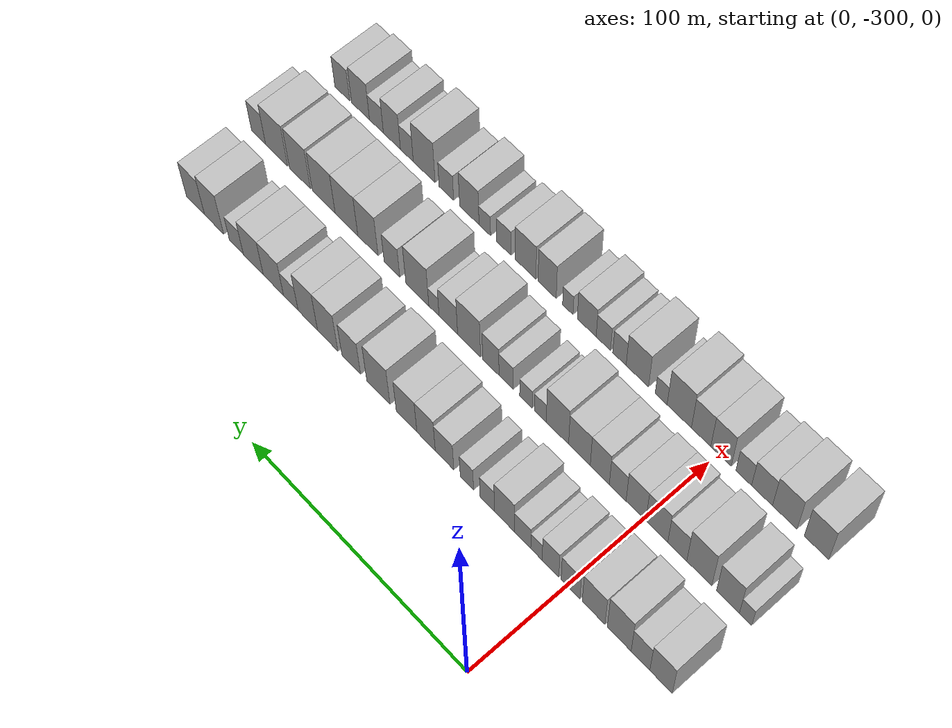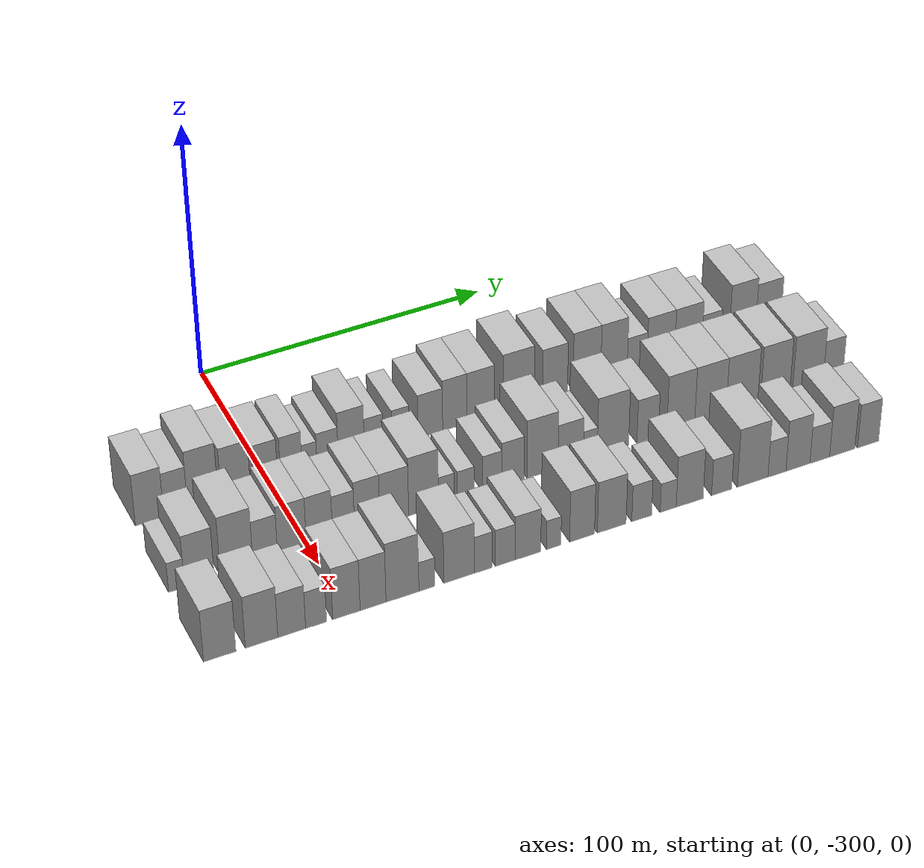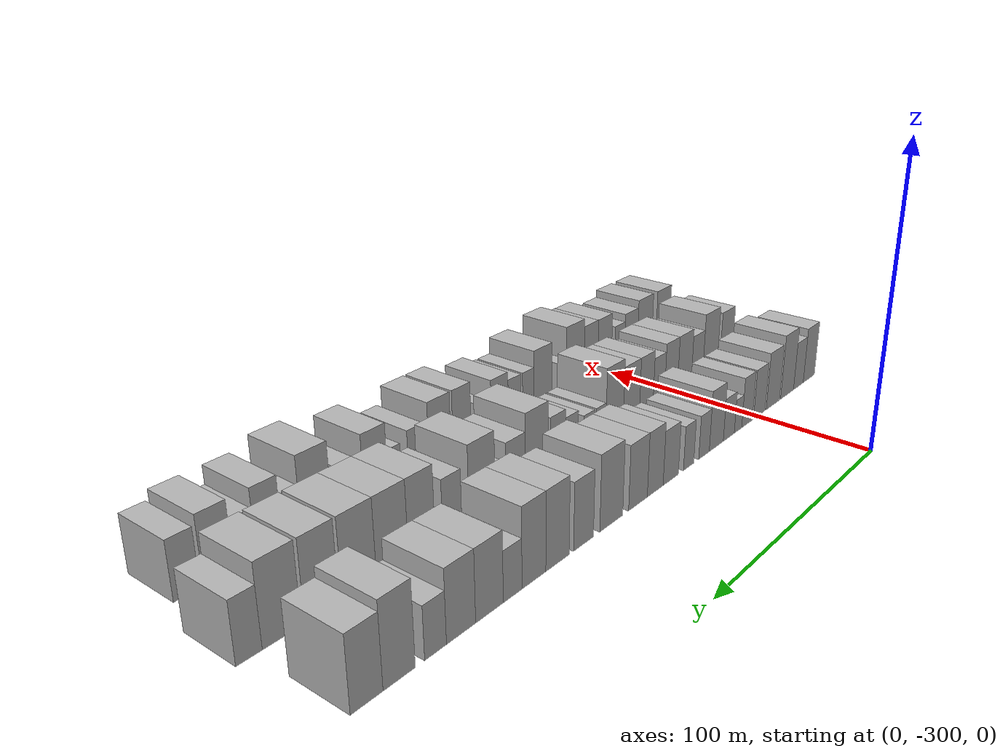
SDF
<sdf version="1.6">
 <world name="default">
  <model name="building_1">
   <static>1</static>
   <pose>50.0000 -340.2826 0 0.000000 0.000000 0.000000</pose>
   <link name="link">
    <pose>0 0 10.50 0 0 0</pose>
    <collision name="collision"><geometry><box><size>20.0000 9.4347 21.0000</size></box></geometry></collision>
    <visual name="visual">
     <cast_shadows>0</cast_shadows>
     <geometry><box><size>20.0000 9.4347 21.0000</size></box></geometry>
     <material>
      <script>
       <uri>model://HANNAS_wall/materials/scripts</uri>
       <uri>model://HANNAS_wall/materials/textures</uri>
       <name>vrc/HANNAS_wall</name>
      </script>
     </material>
    </visual>
   </link>
  </model>
  <model name="building_2">
   <static>1</static>
   <pose>50.0000 -331.6003 0 0.000000 0.000000 0.000000</pose>
   <link name="link">
    <pose>0 0 9.00 0 0 0</pose>
    <collision name="collision"><geometry><box><size>20.0000 7.9299 18.0000</size></box></geometry></collision>
    <visual name="visual">
     <cast_shadows>0</cast_shadows>
     <geometry><box><size>20.0000 7.9299 18.0000</size></box></geometry>
     <material>
      <script>
       <uri>model://HANNAS_wall/materials/scripts</uri>
       <uri>model://HANNAS_wall/materials/textures</uri>
       <name>vrc/HANNAS_wall</name>
      </script>
     </material>
    </visual>
   </link>
  </model>
  <model name="building_3">
   <static>1</static>
   <pose>50.0000 -322.5247 0 0.000000 0.000000 0.000000</pose>
   <link name="link">
    <pose>0 0 12.00 0 0 0</pose>
    <collision name="collision"><geometry><box><size>20.0000 10.2214 24.0000</size></box></geometry></collision>
    <visual name="visual">
     <cast_shadows>0</cast_shadows>
     <geometry><box><size>20.0000 10.2214 24.0000</size></box></geometry>
     <material>
      <script>
       <uri>model://HANNAS_wall/materials/scripts</uri>
       <uri>model://HANNAS_wall/materials/textures</uri>
       <name>vrc/HANNAS_wall</name>
      </script>
     </material>
    </visual>
   </link>
  </model>
  <model name="building_4">
   <static>1</static>
   <pose>50.0000 -311.4862 0 0.000000 0.000000 0.000000</pose>
   <link name="link">
    <pose>0 0 10.50 0 0 0</pose>
    <collision name="collision"><geometry><box><size>20.0000 9.8555 21.0000</size></box></geometry></collision>
    <visual name="visual">
     <cast_shadows>0</cast_shadows>
     <geometry><box><size>20.0000 9.8555 21.0000</size></box></geometry>
     <material>
      <script>
       <uri>model://HANNAS_wall/materials/scripts</uri>
       <uri>model://HANNAS_wall/materials/textures</uri>
       <name>vrc/HANNAS_wall</name>
      </script>
     </material>
    </visual>
   </link>
  </model>
  <model name="building_5">
   <static>1</static>
   <pose>50.0000 -301.4223 0 0.000000 0.000000 0.000000</pose>
   <link name="link">
    <pose>0 0 9.00 0 0 0</pose>
    <collision name="collision"><geometry><box><size>20.0000 8.2723 18.0000</size></box></geometry></collision>
    <visual name="visual">
     <cast_shadows>0</cast_shadows>
     <geometry><box><size>20.0000 8.2723 18.0000</size></box></geometry>
     <material>
      <script>
       <uri>model://HANNAS_wall/materials/scripts</uri>
       <uri>model://HANNAS_wall/materials/textures</uri>
       <name>vrc/HANNAS_wall</name>
      </script>
     </material>
    </visual>
   </link>
  </model>
  <model name="building_6">
   <static>1</static>
   <pose>50.0000 -292.6091 0 0.000000 0.000000 0.000000</pose>
   <link name="link">
    <pose>0 0 9.00 0 0 0</pose>
    <collision name="collision"><geometry><box><size>20.0000 7.3540 18.0000</size></box></geometry></collision>
    <visual name="visual">
     <cast_shadows>0</cast_shadows>
     <geometry><box><size>20.0000 7.3540 18.0000</size></box></geometry>
     <material>
      <script>
       <uri>model://HANNAS_wall/materials/scripts</uri>
       <uri>model://HANNAS_wall/materials/textures</uri>
       <name>vrc/HANNAS_wall</name>
      </script>
     </material>
    </visual>
   </link>
  </model>
  <model name="building_7">
   <static>1</static>
   <pose>50.0000 -286.3886 0 0.000000 0.000000 0.000000</pose>
   <link name="link">
    <pose>0 0 6.00 0 0 0</pose>
    <collision name="collision"><geometry><box><size>20.0000 5.0870 12.0000</size></box></geometry></collision>
    <visual name="visual">
     <cast_shadows>0</cast_shadows>
     <geometry><box><size>20.0000 5.0870 12.0000</size></box></geometry>
     <material>
      <script>
       <uri>model://HANNAS_wall/materials/scripts</uri>
       <uri>model://HANNAS_wall/materials/textures</uri>
       <name>vrc/HANNAS_wall</name>
      </script>
     </material>
    </visual>
   </link>
  </model>
  <model name="building_8">
   <static>1</static>
   <pose>50.0000 -280.1901 0 0.000000 0.000000 0.000000</pose>
   <link name="link">
    <pose>0 0 7.50 0 0 0</pose>
    <collision name="collision"><geometry><box><size>20.0000 7.3101 15.0000</size></box></geometry></collision>
    <visual name="visual">
     <cast_shadows>0</cast_shadows>
     <geometry><box><size>20.0000 7.3101 15.0000</size></box></geometry>
     <material>
      <script>
       <uri>model://HANNAS_wall/materials/scripts</uri>
       <uri>model://HANNAS_wall/materials/textures</uri>
       <name>vrc/HANNAS_wall</name>
      </script>
     </material>
    </visual>
   </link>
  </model>
  <model name="building_9">
   <static>1</static>
   <pose>50.0000 -272.0151 0 0.000000 0.000000 0.000000</pose>
   <link name="link">
    <pose>0 0 10.50 0 0 0</pose>
    <collision name="collision"><geometry><box><size>20.0000 9.0398 21.0000</size></box></geometry></collision>
    <visual name="visual">
     <cast_shadows>0</cast_shadows>
     <geometry><box><size>20.0000 9.0398 21.0000</size></box></geometry>
     <material>
      <script>
       <uri>model://HANNAS_wall/materials/scripts</uri>
       <uri>model://HANNAS_wall/materials/textures</uri>
       <name>vrc/HANNAS_wall</name>
      </script>
     </material>
    </visual>
   </link>
  </model>
  <model name="building_10">
   <static>1</static>
   <pose>50.0000 -264.2155 0 0.000000 0.000000 0.000000</pose>
   <link name="link">
    <pose>0 0 7.50 0 0 0</pose>
    <collision name="collision"><geometry><box><size>20.0000 6.5595 15.0000</size></box></geometry></collision>
    <visual name="visual">
     <cast_shadows>0</cast_shadows>
     <geometry><box><size>20.0000 6.5595 15.0000</size></box></geometry>
     <material>
      <script>
       <uri>model://HANNAS_wall/materials/scripts</uri>
       <uri>model://HANNAS_wall/materials/textures</uri>
       <name>vrc/HANNAS_wall</name>
      </script>
     </material>
    </visual>
   </link>
  </model>
  <model name="building_11">
   <static>1</static>
   <pose>50.0000 -254.8684 0 0.000000 0.000000 0.000000</pose>
   <link name="link">
    <pose>0 0 7.50 0 0 0</pose>
    <collision name="collision"><geometry><box><size>20.0000 6.1347 15.0000</size></box></geometry></collision>
    <visual name="visual">
     <cast_shadows>0</cast_shadows>
     <geometry><box><size>20.0000 6.1347 15.0000</size></box></geometry>
     <material>
      <script>
       <uri>model://HANNAS_wall/materials/scripts</uri>
       <uri>model://HANNAS_wall/materials/textures</uri>
       <name>vrc/HANNAS_wall</name>
      </script>
     </material>
    </visual>
   </link>
  </model>
  <model name="building_12">
   <static>1</static>
   <pose>50.0000 -244.4860 0 0.000000 0.000000 0.000000</pose>
   <link name="link">
    <pose>0 0 9.00 0 0 0</pose>
    <collision name="collision"><geometry><box><size>20.0000 8.6300 18.0000</size></box></geometry></collision>
    <visual name="visual">
     <cast_shadows>0</cast_shadows>
     <geometry><box><size>20.0000 8.6300 18.0000</size></box></geometry>
     <material>
      <script>
       <uri>model://HANNAS_wall/materials/scripts</uri>
       <uri>model://HANNAS_wall/materials/textures</uri>
       <name>vrc/HANNAS_wall</name>
      </script>
     </material>
    </visual>
   </link>
  </model>
  <model name="building_13">
   <static>1</static>
   <pose>50.0000 -235.8515 0 0.000000 0.000000 0.000000</pose>
   <link name="link">
    <pose>0 0 10.50 0 0 0</pose>
    <collision name="collision"><geometry><box><size>20.0000 8.6390 21.0000</size></box></geometry></collision>
    <visual name="visual">
     <cast_shadows>0</cast_shadows>
     <geometry><box><size>20.0000 8.6390 21.0000</size></box></geometry>
     <material>
      <script>
       <uri>model://HANNAS_wall/materials/scripts</uri>
       <uri>model://HANNAS_wall/materials/textures</uri>
       <name>vrc/HANNAS_wall</name>
      </script>
     </material>
    </visual>
   </link>
  </model>
  <model name="building_14">
   <static>1</static>
   <pose>50.0000 -226.6366 0 0.000000 0.000000 0.000000</pose>
   <link name="link">
    <pose>0 0 10.50 0 0 0</pose>
    <collision name="collision"><geometry><box><size>20.0000 9.7907 21.0000</size></box></geometry></collision>
    <visual name="visual">
     <cast_shadows>0</cast_shadows>
     <geometry><box><size>20.0000 9.7907 21.0000</size></box></geometry>
     <material>
      <script>
       <uri>model://HANNAS_wall/materials/scripts</uri>
       <uri>model://HANNAS_wall/materials/textures</uri>
       <name>vrc/HANNAS_wall</name>
      </script>
     </material>
    </visual>
   </link>
  </model>
  <model name="building_15">
   <static>1</static>
   <pose>50.0000 -213.1437 0 0.000000 0.000000 0.000000</pose>
   <link name="link">
    <pose>0 0 12.00 0 0 0</pose>
    <collision name="collision"><geometry><box><size>20.0000 11.1949 24.0000</size></box></geometry></collision>
    <visual name="visual">
     <cast_shadows>0</cast_shadows>
     <geometry><box><size>20.0000 11.1949 24.0000</size></box></geometry>
     <material>
      <script>
       <uri>model://HANNAS_wall/materials/scripts</uri>
       <uri>model://HANNAS_wall/materials/textures</uri>
       <name>vrc/HANNAS_wall</name>
      </script>
     </material>
    </visual>
   </link>
  </model>
  <model name="building_16">
   <static>1</static>
   <pose>50.0000 -200.0086 0 0.000000 0.000000 0.000000</pose>
   <link name="link">
    <pose>0 0 10.50 0 0 0</pose>
    <collision name="collision"><geometry><box><size>20.0000 9.0752 21.0000</size></box></geometry></collision>
    <visual name="visual">
     <cast_shadows>0</cast_shadows>
     <geometry><box><size>20.0000 9.0752 21.0000</size></box></geometry>
     <material>
      <script>
       <uri>model://HANNAS_wall/materials/scripts</uri>
       <uri>model://HANNAS_wall/materials/textures</uri>
       <name>vrc/HANNAS_wall</name>
      </script>
     </material>
    </visual>
   </link>
  </model>
  <model name="building_17">
   <static>1</static>
   <pose>50.0000 -188.4318 0 0.000000 0.000000 0.000000</pose>
   <link name="link">
    <pose>0 0 12.00 0 0 0</pose>
    <collision name="collision"><geometry><box><size>20.0000 10.0784 24.0000</size></box></geometry></collision>
    <visual name="visual">
     <cast_shadows>0</cast_shadows>
     <geometry><box><size>20.0000 10.0784 24.0000</size></box></geometry>
     <material>
      <script>
       <uri>model://HANNAS_wall/materials/scripts</uri>
       <uri>model://HANNAS_wall/materials/textures</uri>
       <name>vrc/HANNAS_wall</name>
      </script>
     </material>
    </visual>
   </link>
  </model>
  <model name="building_18">
   <static>1</static>
   <pose>50.0000 -178.5305 0 0.000000 0.000000 0.000000</pose>
   <link name="link">
    <pose>0 0 12.00 0 0 0</pose>
    <collision name="collision"><geometry><box><size>20.0000 9.7241 24.0000</size></box></geometry></collision>
    <visual name="visual">
     <cast_shadows>0</cast_shadows>
     <geometry><box><size>20.0000 9.7241 24.0000</size></box></geometry>
     <material>
      <script>
       <uri>model://HANNAS_wall/materials/scripts</uri>
       <uri>model://HANNAS_wall/materials/textures</uri>
       <name>vrc/HANNAS_wall</name>
      </script>
     </material>
    </visual>
   </link>
  </model>
  <model name="building_19">
   <static>1</static>
   <pose>50.0000 -170.0126 0 0.000000 0.000000 0.000000</pose>
   <link name="link">
    <pose>0 0 7.50 0 0 0</pose>
    <collision name="collision"><geometry><box><size>20.0000 7.3117 15.0000</size></box></geometry></collision>
    <visual name="visual">
     <cast_shadows>0</cast_shadows>
     <geometry><box><size>20.0000 7.3117 15.0000</size></box></geometry>
     <material>
      <script>
       <uri>model://HANNAS_wall/materials/scripts</uri>
       <uri>model://HANNAS_wall/materials/textures</uri>
       <name>vrc/HANNAS_wall</name>
      </script>
     </material>
    </visual>
   </link>
  </model>
  <model name="building_20">
   <static>1</static>
   <pose>50.0000 -161.2173 0 0.000000 0.000000 0.000000</pose>
   <link name="link">
    <pose>0 0 10.50 0 0 0</pose>
    <collision name="collision"><geometry><box><size>20.0000 10.2788 21.0000</size></box></geometry></collision>
    <visual name="visual">
     <cast_shadows>0</cast_shadows>
     <geometry><box><size>20.0000 10.2788 21.0000</size></box></geometry>
     <material>
      <script>
       <uri>model://HANNAS_wall/materials/scripts</uri>
       <uri>model://HANNAS_wall/materials/textures</uri>
       <name>vrc/HANNAS_wall</name>
      </script>
     </material>
    </visual>
   </link>
  </model>
  <model name="building_21">
   <static>1</static>
   <pose>50.0000 -150.9721 0 0.000000 0.000000 0.000000</pose>
   <link name="link">
    <pose>0 0 10.50 0 0 0</pose>
    <collision name="collision"><geometry><box><size>20.0000 10.2117 21.0000</size></box></geometry></collision>
    <visual name="visual">
     <cast_shadows>0</cast_shadows>
     <geometry><box><size>20.0000 10.2117 21.0000</size></box></geometry>
     <material>
      <script>
       <uri>model://HANNAS_wall/materials/scripts</uri>
       <uri>model://HANNAS_wall/materials/textures</uri>
       <name>vrc/HANNAS_wall</name>
      </script>
     </material>
    </visual>
   </link>
  </model>
  <model name="building_22">
   <static>1</static>
   <pose>50.0000 -142.2356 0 0.000000 0.000000 0.000000</pose>
   <link name="link">
    <pose>0 0 7.50 0 0 0</pose>
    <collision name="collision"><geometry><box><size>20.0000 7.2612 15.0000</size></box></geometry></collision>
    <visual name="visual">
     <cast_shadows>0</cast_shadows>
     <geometry><box><size>20.0000 7.2612 15.0000</size></box></geometry>
     <material>
      <script>
       <uri>model://HANNAS_wall/materials/scripts</uri>
       <uri>model://HANNAS_wall/materials/textures</uri>
       <name>vrc/HANNAS_wall</name>
      </script>
     </material>
    </visual>
   </link>
  </model>
  <model name="building_23">
   <static>1</static>
   <pose>50.0000 -130.6100 0 0.000000 0.000000 0.000000</pose>
   <link name="link">
    <pose>0 0 12.00 0 0 0</pose>
    <collision name="collision"><geometry><box><size>20.0000 9.9899 24.0000</size></box></geometry></collision>
    <visual name="visual">
     <cast_shadows>0</cast_shadows>
     <geometry><box><size>20.0000 9.9899 24.0000</size></box></geometry>
     <material>
      <script>
       <uri>model://HANNAS_wall/materials/scripts</uri>
       <uri>model://HANNAS_wall/materials/textures</uri>
       <name>vrc/HANNAS_wall</name>
      </script>
     </material>
    </visual>
   </link>
  </model>
  <model name="building_24">
   <static>1</static>
   <pose>50.0000 -120.8215 0 0.000000 0.000000 0.000000</pose>
   <link name="link">
    <pose>0 0 10.50 0 0 0</pose>
    <collision name="collision"><geometry><box><size>20.0000 9.5870 21.0000</size></box></geometry></collision>
    <visual name="visual">
     <cast_shadows>0</cast_shadows>
     <geometry><box><size>20.0000 9.5870 21.0000</size></box></geometry>
     <material>
      <script>
       <uri>model://HANNAS_wall/materials/scripts</uri>
       <uri>model://HANNAS_wall/materials/textures</uri>
       <name>vrc/HANNAS_wall</name>
      </script>
     </material>
    </visual>
   </link>
  </model>
  <model name="building_78">
   <static>1</static>
   <pose>82.0000 -343.4094 0 0.000000 0.000000 0.000000</pose>
   <link name="link">
    <pose>0 0 6.00 0 0 0</pose>
    <collision name="collision"><geometry><box><size>20.0000 5.1812 12.0000</size></box></geometry></collision>
    <visual name="visual">
     <cast_shadows>0</cast_shadows>
     <geometry><box><size>20.0000 5.1812 12.0000</size></box></geometry>
     <material>
      <script>
       <uri>model://HANNAS_wall/materials/scripts</uri>
       <uri>model://HANNAS_wall/materials/textures</uri>
       <name>vrc/HANNAS_wall</name>
      </script>
     </material>
    </visual>
   </link>
  </model>
  <model name="building_79">
   <static>1</static>
   <pose>82.0000 -335.9947 0 0.000000 0.000000 0.000000</pose>
   <link name="link">
    <pose>0 0 10.50 0 0 0</pose>
    <collision name="collision"><geometry><box><size>20.0000 9.6481 21.0000</size></box></geometry></collision>
    <visual name="visual">
     <cast_shadows>0</cast_shadows>
     <geometry><box><size>20.0000 9.6481 21.0000</size></box></geometry>
     <material>
      <script>
       <uri>model://HANNAS_wall/materials/scripts</uri>
       <uri>model://HANNAS_wall/materials/textures</uri>
       <name>vrc/HANNAS_wall</name>
      </script>
     </material>
    </visual>
   </link>
  </model>
  <model name="building_80">
   <static>1</static>
   <pose>82.0000 -323.8255 0 0.000000 0.000000 0.000000</pose>
   <link name="link">
    <pose>0 0 12.00 0 0 0</pose>
    <collision name="collision"><geometry><box><size>20.0000 10.6903 24.0000</size></box></geometry></collision>
    <visual name="visual">
     <cast_shadows>0</cast_shadows>
     <geometry><box><size>20.0000 10.6903 24.0000</size></box></geometry>
     <material>
      <script>
       <uri>model://HANNAS_wall/materials/scripts</uri>
       <uri>model://HANNAS_wall/materials/textures</uri>
       <name>vrc/HANNAS_wall</name>
      </script>
     </material>
    </visual>
   </link>
  </model>
  <model name="building_81">
   <static>1</static>
   <pose>82.0000 -314.3916 0 0.000000 0.000000 0.000000</pose>
   <link name="link">
    <pose>0 0 9.00 0 0 0</pose>
    <collision name="collision"><geometry><box><size>20.0000 8.1776 18.0000</size></box></geometry></collision>
    <visual name="visual">
     <cast_shadows>0</cast_shadows>
     <geometry><box><size>20.0000 8.1776 18.0000</size></box></geometry>
     <material>
      <script>
       <uri>model://HANNAS_wall/materials/scripts</uri>
       <uri>model://HANNAS_wall/materials/textures</uri>
       <name>vrc/HANNAS_wall</name>
      </script>
     </material>
    </visual>
   </link>
  </model>
  <model name="building_82">
   <static>1</static>
   <pose>82.0000 -305.5105 0 0.000000 0.000000 0.000000</pose>
   <link name="link">
    <pose>0 0 10.50 0 0 0</pose>
    <collision name="collision"><geometry><box><size>20.0000 9.5847 21.0000</size></box></geometry></collision>
    <visual name="visual">
     <cast_shadows>0</cast_shadows>
     <geometry><box><size>20.0000 9.5847 21.0000</size></box></geometry>
     <material>
      <script>
       <uri>model://HANNAS_wall/materials/scripts</uri>
       <uri>model://HANNAS_wall/materials/textures</uri>
       <name>vrc/HANNAS_wall</name>
      </script>
     </material>
    </visual>
   </link>
  </model>
  <model name="building_83">
   <static>1</static>
   <pose>82.0000 -296.3707 0 0.000000 0.000000 0.000000</pose>
   <link name="link">
    <pose>0 0 10.50 0 0 0</pose>
    <collision name="collision"><geometry><box><size>20.0000 8.6948 21.0000</size></box></geometry></collision>
    <visual name="visual">
     <cast_shadows>0</cast_shadows>
     <geometry><box><size>20.0000 8.6948 21.0000</size></box></geometry>
     <material>
      <script>
       <uri>model://HANNAS_wall/materials/scripts</uri>
       <uri>model://HANNAS_wall/materials/textures</uri>
       <name>vrc/HANNAS_wall</name>
      </script>
     </material>
    </visual>
   </link>
  </model>
  <model name="building_84">
   <static>1</static>
   <pose>82.0000 -288.3122 0 0.000000 0.000000 0.000000</pose>
   <link name="link">
    <pose>0 0 9.00 0 0 0</pose>
    <collision name="collision"><geometry><box><size>20.0000 7.4221 18.0000</size></box></geometry></collision>
    <visual name="visual">
     <cast_shadows>0</cast_shadows>
     <geometry><box><size>20.0000 7.4221 18.0000</size></box></geometry>
     <material>
      <script>
       <uri>model://HANNAS_wall/materials/scripts</uri>
       <uri>model://HANNAS_wall/materials/textures</uri>
       <name>vrc/HANNAS_wall</name>
      </script>
     </material>
    </visual>
   </link>
  </model>
  <model name="building_85">
   <static>1</static>
   <pose>82.0000 -280.3371 0 0.000000 0.000000 0.000000</pose>
   <link name="link">
    <pose>0 0 10.50 0 0 0</pose>
    <collision name="collision"><geometry><box><size>20.0000 8.5281 21.0000</size></box></geometry></collision>
    <visual name="visual">
     <cast_shadows>0</cast_shadows>
     <geometry><box><size>20.0000 8.5281 21.0000</size></box></geometry>
     <material>
      <script>
       <uri>model://HANNAS_wall/materials/scripts</uri>
       <uri>model://HANNAS_wall/materials/textures</uri>
       <name>vrc/HANNAS_wall</name>
      </script>
     </material>
    </visual>
   </link>
  </model>
  <model name="building_86">
   <static>1</static>
   <pose>82.0000 -271.1911 0 0.000000 0.000000 0.000000</pose>
   <link name="link">
    <pose>0 0 10.50 0 0 0</pose>
    <collision name="collision"><geometry><box><size>20.0000 9.7640 21.0000</size></box></geometry></collision>
    <visual name="visual">
     <cast_shadows>0</cast_shadows>
     <geometry><box><size>20.0000 9.7640 21.0000</size></box></geometry>
     <material>
      <script>
       <uri>model://HANNAS_wall/materials/scripts</uri>
       <uri>model://HANNAS_wall/materials/textures</uri>
       <name>vrc/HANNAS_wall</name>
      </script>
     </material>
    </visual>
   </link>
  </model>
  <model name="building_87">
   <static>1</static>
   <pose>82.0000 -261.2095 0 0.000000 0.000000 0.000000</pose>
   <link name="link">
    <pose>0 0 12.00 0 0 0</pose>
    <collision name="collision"><geometry><box><size>20.0000 10.1993 24.0000</size></box></geometry></collision>
    <visual name="visual">
     <cast_shadows>0</cast_shadows>
     <geometry><box><size>20.0000 10.1993 24.0000</size></box></geometry>
     <material>
      <script>
       <uri>model://HANNAS_wall/materials/scripts</uri>
       <uri>model://HANNAS_wall/materials/textures</uri>
       <name>vrc/HANNAS_wall</name>
      </script>
     </material>
    </visual>
   </link>
  </model>
  <model name="building_88">
   <static>1</static>
   <pose>82.0000 -253.3691 0 0.000000 0.000000 0.000000</pose>
   <link name="link">
    <pose>0 0 6.00 0 0 0</pose>
    <collision name="collision"><geometry><box><size>20.0000 5.4813 12.0000</size></box></geometry></collision>
    <visual name="visual">
     <cast_shadows>0</cast_shadows>
     <geometry><box><size>20.0000 5.4813 12.0000</size></box></geometry>
     <material>
      <script>
       <uri>model://HANNAS_wall/materials/scripts</uri>
       <uri>model://HANNAS_wall/materials/textures</uri>
       <name>vrc/HANNAS_wall</name>
      </script>
     </material>
    </visual>
   </link>
  </model>
  <model name="building_89">
   <static>1</static>
   <pose>82.0000 -246.7317 0 0.000000 0.000000 0.000000</pose>
   <link name="link">
    <pose>0 0 6.00 0 0 0</pose>
    <collision name="collision"><geometry><box><size>20.0000 5.7935 12.0000</size></box></geometry></collision>
    <visual name="visual">
     <cast_shadows>0</cast_shadows>
     <geometry><box><size>20.0000 5.7935 12.0000</size></box></geometry>
     <material>
      <script>
       <uri>model://HANNAS_wall/materials/scripts</uri>
       <uri>model://HANNAS_wall/materials/textures</uri>
       <name>vrc/HANNAS_wall</name>
      </script>
     </material>
    </visual>
   </link>
  </model>
  <model name="building_90">
   <static>1</static>
   <pose>82.0000 -237.5173 0 0.000000 0.000000 0.000000</pose>
   <link name="link">
    <pose>0 0 7.50 0 0 0</pose>
    <collision name="collision"><geometry><box><size>20.0000 6.6353 15.0000</size></box></geometry></collision>
    <visual name="visual">
     <cast_shadows>0</cast_shadows>
     <geometry><box><size>20.0000 6.6353 15.0000</size></box></geometry>
     <material>
      <script>
       <uri>model://HANNAS_wall/materials/scripts</uri>
       <uri>model://HANNAS_wall/materials/textures</uri>
       <name>vrc/HANNAS_wall</name>
      </script>
     </material>
    </visual>
   </link>
  </model>
  <model name="building_91">
   <static>1</static>
   <pose>82.0000 -230.3420 0 0.000000 0.000000 0.000000</pose>
   <link name="link">
    <pose>0 0 9.00 0 0 0</pose>
    <collision name="collision"><geometry><box><size>20.0000 7.7153 18.0000</size></box></geometry></collision>
    <visual name="visual">
     <cast_shadows>0</cast_shadows>
     <geometry><box><size>20.0000 7.7153 18.0000</size></box></geometry>
     <material>
      <script>
       <uri>model://HANNAS_wall/materials/scripts</uri>
       <uri>model://HANNAS_wall/materials/textures</uri>
       <name>vrc/HANNAS_wall</name>
      </script>
     </material>
    </visual>
   </link>
  </model>
  <model name="building_92">
   <static>1</static>
   <pose>82.0000 -220.0157 0 0.000000 0.000000 0.000000</pose>
   <link name="link">
    <pose>0 0 12.00 0 0 0</pose>
    <collision name="collision"><geometry><box><size>20.0000 10.9374 24.0000</size></box></geometry></collision>
    <visual name="visual">
     <cast_shadows>0</cast_shadows>
     <geometry><box><size>20.0000 10.9374 24.0000</size></box></geometry>
     <material>
      <script>
       <uri>model://HANNAS_wall/materials/scripts</uri>
       <uri>model://HANNAS_wall/materials/textures</uri>
       <name>vrc/HANNAS_wall</name>
      </script>
     </material>
    </visual>
   </link>
  </model>
  <model name="building_93">
   <static>1</static>
   <pose>82.0000 -210.0838 0 0.000000 0.000000 0.000000</pose>
   <link name="link">
    <pose>0 0 9.00 0 0 0</pose>
    <collision name="collision"><geometry><box><size>20.0000 8.9265 18.0000</size></box></geometry></collision>
    <visual name="visual">
     <cast_shadows>0</cast_shadows>
     <geometry><box><size>20.0000 8.9265 18.0000</size></box></geometry>
     <material>
      <script>
       <uri>model://HANNAS_wall/materials/scripts</uri>
       <uri>model://HANNAS_wall/materials/textures</uri>
       <name>vrc/HANNAS_wall</name>
      </script>
     </material>
    </visual>
   </link>
  </model>
  <model name="building_94">
   <static>1</static>
   <pose>82.0000 -203.1480 0 0.000000 0.000000 0.000000</pose>
   <link name="link">
    <pose>0 0 6.00 0 0 0</pose>
    <collision name="collision"><geometry><box><size>20.0000 4.9450 12.0000</size></box></geometry></collision>
    <visual name="visual">
     <cast_shadows>0</cast_shadows>
     <geometry><box><size>20.0000 4.9450 12.0000</size></box></geometry>
     <material>
      <script>
       <uri>model://HANNAS_wall/materials/scripts</uri>
       <uri>model://HANNAS_wall/materials/textures</uri>
       <name>vrc/HANNAS_wall</name>
      </script>
     </material>
    </visual>
   </link>
  </model>
  <model name="building_95">
   <static>1</static>
   <pose>82.0000 -195.0651 0 0.000000 0.000000 0.000000</pose>
   <link name="link">
    <pose>0 0 12.00 0 0 0</pose>
    <collision name="collision"><geometry><box><size>20.0000 11.2209 24.0000</size></box></geometry></collision>
    <visual name="visual">
     <cast_shadows>0</cast_shadows>
     <geometry><box><size>20.0000 11.2209 24.0000</size></box></geometry>
     <material>
      <script>
       <uri>model://HANNAS_wall/materials/scripts</uri>
       <uri>model://HANNAS_wall/materials/textures</uri>
       <name>vrc/HANNAS_wall</name>
      </script>
     </material>
    </visual>
   </link>
  </model>
  <model name="building_96">
   <static>1</static>
   <pose>82.0000 -182.5820 0 0.000000 0.000000 0.000000</pose>
   <link name="link">
    <pose>0 0 9.00 0 0 0</pose>
    <collision name="collision"><geometry><box><size>20.0000 7.7453 18.0000</size></box></geometry></collision>
    <visual name="visual">
     <cast_shadows>0</cast_shadows>
     <geometry><box><size>20.0000 7.7453 18.0000</size></box></geometry>
     <material>
      <script>
       <uri>model://HANNAS_wall/materials/scripts</uri>
       <uri>model://HANNAS_wall/materials/textures</uri>
       <name>vrc/HANNAS_wall</name>
      </script>
     </material>
    </visual>
   </link>
  </model>
  <model name="building_97">
   <static>1</static>
   <pose>82.0000 -170.6393 0 0.000000 0.000000 0.000000</pose>
   <link name="link">
    <pose>0 0 12.00 0 0 0</pose>
    <collision name="collision"><geometry><box><size>20.0000 10.1400 24.0000</size></box></geometry></collision>
    <visual name="visual">
     <cast_shadows>0</cast_shadows>
     <geometry><box><size>20.0000 10.1400 24.0000</size></box></geometry>
     <material>
      <script>
       <uri>model://HANNAS_wall/materials/scripts</uri>
       <uri>model://HANNAS_wall/materials/textures</uri>
       <name>vrc/HANNAS_wall</name>
      </script>
     </material>
    </visual>
   </link>
  </model>
  <model name="building_98">
   <static>1</static>
   <pose>82.0000 -159.8133 0 0.000000 0.000000 0.000000</pose>
   <link name="link">
    <pose>0 0 12.00 0 0 0</pose>
    <collision name="collision"><geometry><box><size>20.0000 11.5119 24.0000</size></box></geometry></collision>
    <visual name="visual">
     <cast_shadows>0</cast_shadows>
     <geometry><box><size>20.0000 11.5119 24.0000</size></box></geometry>
     <material>
      <script>
       <uri>model://HANNAS_wall/materials/scripts</uri>
       <uri>model://HANNAS_wall/materials/textures</uri>
       <name>vrc/HANNAS_wall</name>
      </script>
     </material>
    </visual>
   </link>
  </model>
  <model name="building_99">
   <static>1</static>
   <pose>82.0000 -148.2312 0 0.000000 0.000000 0.000000</pose>
   <link name="link">
    <pose>0 0 12.00 0 0 0</pose>
    <collision name="collision"><geometry><box><size>20.0000 11.6523 24.0000</size></box></geometry></collision>
    <visual name="visual">
     <cast_shadows>0</cast_shadows>
     <geometry><box><size>20.0000 11.6523 24.0000</size></box></geometry>
     <material>
      <script>
       <uri>model://HANNAS_wall/materials/scripts</uri>
       <uri>model://HANNAS_wall/materials/textures</uri>
       <name>vrc/HANNAS_wall</name>
      </script>
     </material>
    </visual>
   </link>
  </model>
  <model name="building_100">
   <static>1</static>
   <pose>82.0000 -135.9717 0 0.000000 0.000000 0.000000</pose>
   <link name="link">
    <pose>0 0 12.00 0 0 0</pose>
    <collision name="collision"><geometry><box><size>20.0000 10.8668 24.0000</size></box></geometry></collision>
    <visual name="visual">
     <cast_shadows>0</cast_shadows>
     <geometry><box><size>20.0000 10.8668 24.0000</size></box></geometry>
     <material>
      <script>
       <uri>model://HANNAS_wall/materials/scripts</uri>
       <uri>model://HANNAS_wall/materials/textures</uri>
       <name>vrc/HANNAS_wall</name>
      </script>
     </material>
    </visual>
   </link>
  </model>
  <model name="building_101">
   <static>1</static>
   <pose>82.0000 -123.7868 0 0.000000 0.000000 0.000000</pose>
   <link name="link">
    <pose>0 0 12.00 0 0 0</pose>
    <collision name="collision"><geometry><box><size>20.0000 11.5030 24.0000</size></box></geometry></collision>
    <visual name="visual">
     <cast_shadows>0</cast_shadows>
     <geometry><box><size>20.0000 11.5030 24.0000</size></box></geometry>
     <material>
      <script>
       <uri>model://HANNAS_wall/materials/scripts</uri>
       <uri>model://HANNAS_wall/materials/textures</uri>
       <name>vrc/HANNAS_wall</name>
      </script>
     </material>
    </visual>
   </link>
  </model>
  <model name="building_102">
   <static>1</static>
   <pose>82.0000 -114.3145 0 0.000000 0.000000 0.000000</pose>
   <link name="link">
    <pose>0 0 9.00 0 0 0</pose>
    <collision name="collision"><geometry><box><size>20.0000 7.4416 18.0000</size></box></geometry></collision>
    <visual name="visual">
     <cast_shadows>0</cast_shadows>
     <geometry><box><size>20.0000 7.4416 18.0000</size></box></geometry>
     <material>
      <script>
       <uri>model://HANNAS_wall/materials/scripts</uri>
       <uri>model://HANNAS_wall/materials/textures</uri>
       <name>vrc/HANNAS_wall</name>
      </script>
     </material>
    </visual>
   </link>
  </model>
  <model name="building_154">
   <static>1</static>
   <pose>114.0000 -341.8540 0 0.000000 0.000000 0.000000</pose>
   <link name="link">
    <pose>0 0 10.50 0 0 0</pose>
    <collision name="collision"><geometry><box><size>20.0000 10.2921 21.0000</size></box></geometry></collision>
    <visual name="visual">
     <cast_shadows>0</cast_shadows>
     <geometry><box><size>20.0000 10.2921 21.0000</size></box></geometry>
     <material>
      <script>
       <uri>model://HANNAS_wall/materials/scripts</uri>
       <uri>model://HANNAS_wall/materials/textures</uri>
       <name>vrc/HANNAS_wall</name>
      </script>
     </material>
    </visual>
   </link>
  </model>
  <model name="building_155">
   <static>1</static>
   <pose>114.0000 -328.4867 0 0.000000 0.000000 0.000000</pose>
   <link name="link">
    <pose>0 0 10.50 0 0 0</pose>
    <collision name="collision"><geometry><box><size>20.0000 10.4425 21.0000</size></box></geometry></collision>
    <visual name="visual">
     <cast_shadows>0</cast_shadows>
     <geometry><box><size>20.0000 10.4425 21.0000</size></box></geometry>
     <material>
      <script>
       <uri>model://HANNAS_wall/materials/scripts</uri>
       <uri>model://HANNAS_wall/materials/textures</uri>
       <name>vrc/HANNAS_wall</name>
      </script>
     </material>
    </visual>
   </link>
  </model>
  <model name="building_156">
   <static>1</static>
   <pose>114.0000 -318.7810 0 0.000000 0.000000 0.000000</pose>
   <link name="link">
    <pose>0 0 9.00 0 0 0</pose>
    <collision name="collision"><geometry><box><size>20.0000 8.9687 18.0000</size></box></geometry></collision>
    <visual name="visual">
     <cast_shadows>0</cast_shadows>
     <geometry><box><size>20.0000 8.9687 18.0000</size></box></geometry>
     <material>
      <script>
       <uri>model://HANNAS_wall/materials/scripts</uri>
       <uri>model://HANNAS_wall/materials/textures</uri>
       <name>vrc/HANNAS_wall</name>
      </script>
     </material>
    </visual>
   </link>
  </model>
  <model name="building_157">
   <static>1</static>
   <pose>114.0000 -310.9107 0 0.000000 0.000000 0.000000</pose>
   <link name="link">
    <pose>0 0 7.50 0 0 0</pose>
    <collision name="collision"><geometry><box><size>20.0000 6.7720 15.0000</size></box></geometry></collision>
    <visual name="visual">
     <cast_shadows>0</cast_shadows>
     <geometry><box><size>20.0000 6.7720 15.0000</size></box></geometry>
     <material>
      <script>
       <uri>model://HANNAS_wall/materials/scripts</uri>
       <uri>model://HANNAS_wall/materials/textures</uri>
       <name>vrc/HANNAS_wall</name>
      </script>
     </material>
    </visual>
   </link>
  </model>
  <model name="building_158">
   <static>1</static>
   <pose>114.0000 -301.0437 0 0.000000 0.000000 0.000000</pose>
   <link name="link">
    <pose>0 0 10.50 0 0 0</pose>
    <collision name="collision"><geometry><box><size>20.0000 8.9620 21.0000</size></box></geometry></collision>
    <visual name="visual">
     <cast_shadows>0</cast_shadows>
     <geometry><box><size>20.0000 8.9620 21.0000</size></box></geometry>
     <material>
      <script>
       <uri>model://HANNAS_wall/materials/scripts</uri>
       <uri>model://HANNAS_wall/materials/textures</uri>
       <name>vrc/HANNAS_wall</name>
      </script>
     </material>
    </visual>
   </link>
  </model>
  <model name="building_159">
   <static>1</static>
   <pose>114.0000 -292.2930 0 0.000000 0.000000 0.000000</pose>
   <link name="link">
    <pose>0 0 10.50 0 0 0</pose>
    <collision name="collision"><geometry><box><size>20.0000 8.5394 21.0000</size></box></geometry></collision>
    <visual name="visual">
     <cast_shadows>0</cast_shadows>
     <geometry><box><size>20.0000 8.5394 21.0000</size></box></geometry>
     <material>
      <script>
       <uri>model://HANNAS_wall/materials/scripts</uri>
       <uri>model://HANNAS_wall/materials/textures</uri>
       <name>vrc/HANNAS_wall</name>
      </script>
     </material>
    </visual>
   </link>
  </model>
  <model name="building_160">
   <static>1</static>
   <pose>114.0000 -282.5942 0 0.000000 0.000000 0.000000</pose>
   <link name="link">
    <pose>0 0 12.00 0 0 0</pose>
    <collision name="collision"><geometry><box><size>20.0000 10.8583 24.0000</size></box></geometry></collision>
    <visual name="visual">
     <cast_shadows>0</cast_shadows>
     <geometry><box><size>20.0000 10.8583 24.0000</size></box></geometry>
     <material>
      <script>
       <uri>model://HANNAS_wall/materials/scripts</uri>
       <uri>model://HANNAS_wall/materials/textures</uri>
       <name>vrc/HANNAS_wall</name>
      </script>
     </material>
    </visual>
   </link>
  </model>
  <model name="building_161">
   <static>1</static>
   <pose>114.0000 -274.5017 0 0.000000 0.000000 0.000000</pose>
   <link name="link">
    <pose>0 0 6.00 0 0 0</pose>
    <collision name="collision"><geometry><box><size>20.0000 5.3266 12.0000</size></box></geometry></collision>
    <visual name="visual">
     <cast_shadows>0</cast_shadows>
     <geometry><box><size>20.0000 5.3266 12.0000</size></box></geometry>
     <material>
      <script>
       <uri>model://HANNAS_wall/materials/scripts</uri>
       <uri>model://HANNAS_wall/materials/textures</uri>
       <name>vrc/HANNAS_wall</name>
      </script>
     </material>
    </visual>
   </link>
  </model>
  <model name="building_162">
   <static>1</static>
   <pose>114.0000 -263.7343 0 0.000000 0.000000 0.000000</pose>
   <link name="link">
    <pose>0 0 10.50 0 0 0</pose>
    <collision name="collision"><geometry><box><size>20.0000 10.2083 21.0000</size></box></geometry></collision>
    <visual name="visual">
     <cast_shadows>0</cast_shadows>
     <geometry><box><size>20.0000 10.2083 21.0000</size></box></geometry>
     <material>
      <script>
       <uri>model://HANNAS_wall/materials/scripts</uri>
       <uri>model://HANNAS_wall/materials/textures</uri>
       <name>vrc/HANNAS_wall</name>
      </script>
     </material>
    </visual>
   </link>
  </model>
  <model name="building_163">
   <static>1</static>
   <pose>114.0000 -255.5577 0 0.000000 0.000000 0.000000</pose>
   <link name="link">
    <pose>0 0 7.50 0 0 0</pose>
    <collision name="collision"><geometry><box><size>20.0000 6.1450 15.0000</size></box></geometry></collision>
    <visual name="visual">
     <cast_shadows>0</cast_shadows>
     <geometry><box><size>20.0000 6.1450 15.0000</size></box></geometry>
     <material>
      <script>
       <uri>model://HANNAS_wall/materials/scripts</uri>
       <uri>model://HANNAS_wall/materials/textures</uri>
       <name>vrc/HANNAS_wall</name>
      </script>
     </material>
    </visual>
   </link>
  </model>
  <model name="building_164">
   <static>1</static>
   <pose>114.0000 -248.1776 0 0.000000 0.000000 0.000000</pose>
   <link name="link">
    <pose>0 0 7.50 0 0 0</pose>
    <collision name="collision"><geometry><box><size>20.0000 6.6152 15.0000</size></box></geometry></collision>
    <visual name="visual">
     <cast_shadows>0</cast_shadows>
     <geometry><box><size>20.0000 6.6152 15.0000</size></box></geometry>
     <material>
      <script>
       <uri>model://HANNAS_wall/materials/scripts</uri>
       <uri>model://HANNAS_wall/materials/textures</uri>
       <name>vrc/HANNAS_wall</name>
      </script>
     </material>
    </visual>
   </link>
  </model>
  <model name="building_165">
   <static>1</static>
   <pose>114.0000 -240.4820 0 0.000000 0.000000 0.000000</pose>
   <link name="link">
    <pose>0 0 9.00 0 0 0</pose>
    <collision name="collision"><geometry><box><size>20.0000 8.7760 18.0000</size></box></geometry></collision>
    <visual name="visual">
     <cast_shadows>0</cast_shadows>
     <geometry><box><size>20.0000 8.7760 18.0000</size></box></geometry>
     <material>
      <script>
       <uri>model://HANNAS_wall/materials/scripts</uri>
       <uri>model://HANNAS_wall/materials/textures</uri>
       <name>vrc/HANNAS_wall</name>
      </script>
     </material>
    </visual>
   </link>
  </model>
  <model name="building_166">
   <static>1</static>
   <pose>114.0000 -231.6434 0 0.000000 0.000000 0.000000</pose>
   <link name="link">
    <pose>0 0 6.00 0 0 0</pose>
    <collision name="collision"><geometry><box><size>20.0000 4.9012 12.0000</size></box></geometry></collision>
    <visual name="visual">
     <cast_shadows>0</cast_shadows>
     <geometry><box><size>20.0000 4.9012 12.0000</size></box></geometry>
     <material>
      <script>
       <uri>model://HANNAS_wall/materials/scripts</uri>
       <uri>model://HANNAS_wall/materials/textures</uri>
       <name>vrc/HANNAS_wall</name>
      </script>
     </material>
    </visual>
   </link>
  </model>
  <model name="building_167">
   <static>1</static>
   <pose>114.0000 -221.9026 0 0.000000 0.000000 0.000000</pose>
   <link name="link">
    <pose>0 0 10.50 0 0 0</pose>
    <collision name="collision"><geometry><box><size>20.0000 8.5805 21.0000</size></box></geometry></collision>
    <visual name="visual">
     <cast_shadows>0</cast_shadows>
     <geometry><box><size>20.0000 8.5805 21.0000</size></box></geometry>
     <material>
      <script>
       <uri>model://HANNAS_wall/materials/scripts</uri>
       <uri>model://HANNAS_wall/materials/textures</uri>
       <name>vrc/HANNAS_wall</name>
      </script>
     </material>
    </visual>
   </link>
  </model>
  <model name="building_168">
   <static>1</static>
   <pose>114.0000 -211.6328 0 0.000000 0.000000 0.000000</pose>
   <link name="link">
    <pose>0 0 10.50 0 0 0</pose>
    <collision name="collision"><geometry><box><size>20.0000 9.9592 21.0000</size></box></geometry></collision>
    <visual name="visual">
     <cast_shadows>0</cast_shadows>
     <geometry><box><size>20.0000 9.9592 21.0000</size></box></geometry>
     <material>
      <script>
       <uri>model://HANNAS_wall/materials/scripts</uri>
       <uri>model://HANNAS_wall/materials/textures</uri>
       <name>vrc/HANNAS_wall</name>
      </script>
     </material>
    </visual>
   </link>
  </model>
  <model name="building_169">
   <static>1</static>
   <pose>114.0000 -201.1947 0 0.000000 0.000000 0.000000</pose>
   <link name="link">
    <pose>0 0 7.50 0 0 0</pose>
    <collision name="collision"><geometry><box><size>20.0000 6.9168 15.0000</size></box></geometry></collision>
    <visual name="visual">
     <cast_shadows>0</cast_shadows>
     <geometry><box><size>20.0000 6.9168 15.0000</size></box></geometry>
     <material>
      <script>
       <uri>model://HANNAS_wall/materials/scripts</uri>
       <uri>model://HANNAS_wall/materials/textures</uri>
       <name>vrc/HANNAS_wall</name>
      </script>
     </material>
    </visual>
   </link>
  </model>
  <model name="building_170">
   <static>1</static>
   <pose>114.0000 -191.9115 0 0.000000 0.000000 0.000000</pose>
   <link name="link">
    <pose>0 0 6.00 0 0 0</pose>
    <collision name="collision"><geometry><box><size>20.0000 5.6497 12.0000</size></box></geometry></collision>
    <visual name="visual">
     <cast_shadows>0</cast_shadows>
     <geometry><box><size>20.0000 5.6497 12.0000</size></box></geometry>
     <material>
      <script>
       <uri>model://HANNAS_wall/materials/scripts</uri>
       <uri>model://HANNAS_wall/materials/textures</uri>
       <name>vrc/HANNAS_wall</name>
      </script>
     </material>
    </visual>
   </link>
  </model>
  <model name="building_171">
   <static>1</static>
   <pose>114.0000 -184.3164 0 0.000000 0.000000 0.000000</pose>
   <link name="link">
    <pose>0 0 10.50 0 0 0</pose>
    <collision name="collision"><geometry><box><size>20.0000 9.5403 21.0000</size></box></geometry></collision>
    <visual name="visual">
     <cast_shadows>0</cast_shadows>
     <geometry><box><size>20.0000 9.5403 21.0000</size></box></geometry>
     <material>
      <script>
       <uri>model://HANNAS_wall/materials/scripts</uri>
       <uri>model://HANNAS_wall/materials/textures</uri>
       <name>vrc/HANNAS_wall</name>
      </script>
     </material>
    </visual>
   </link>
  </model>
  <model name="building_172">
   <static>1</static>
   <pose>114.0000 -172.9472 0 0.000000 0.000000 0.000000</pose>
   <link name="link">
    <pose>0 0 7.50 0 0 0</pose>
    <collision name="collision"><geometry><box><size>20.0000 7.1982 15.0000</size></box></geometry></collision>
    <visual name="visual">
     <cast_shadows>0</cast_shadows>
     <geometry><box><size>20.0000 7.1982 15.0000</size></box></geometry>
     <material>
      <script>
       <uri>model://HANNAS_wall/materials/scripts</uri>
       <uri>model://HANNAS_wall/materials/textures</uri>
       <name>vrc/HANNAS_wall</name>
      </script>
     </material>
    </visual>
   </link>
  </model>
  <model name="building_173">
   <static>1</static>
   <pose>114.0000 -161.8508 0 0.000000 0.000000 0.000000</pose>
   <link name="link">
    <pose>0 0 12.00 0 0 0</pose>
    <collision name="collision"><geometry><box><size>20.0000 10.9945 24.0000</size></box></geometry></collision>
    <visual name="visual">
     <cast_shadows>0</cast_shadows>
     <geometry><box><size>20.0000 10.9945 24.0000</size></box></geometry>
     <material>
      <script>
       <uri>model://HANNAS_wall/materials/scripts</uri>
       <uri>model://HANNAS_wall/materials/textures</uri>
       <name>vrc/HANNAS_wall</name>
      </script>
     </material>
    </visual>
   </link>
  </model>
  <model name="building_174">
   <static>1</static>
   <pose>114.0000 -153.0895 0 0.000000 0.000000 0.000000</pose>
   <link name="link">
    <pose>0 0 7.50 0 0 0</pose>
    <collision name="collision"><geometry><box><size>20.0000 6.5280 15.0000</size></box></geometry></collision>
    <visual name="visual">
     <cast_shadows>0</cast_shadows>
     <geometry><box><size>20.0000 6.5280 15.0000</size></box></geometry>
     <material>
      <script>
       <uri>model://HANNAS_wall/materials/scripts</uri>
       <uri>model://HANNAS_wall/materials/textures</uri>
       <name>vrc/HANNAS_wall</name>
      </script>
     </material>
    </visual>
   </link>
  </model>
  <model name="building_175">
   <static>1</static>
   <pose>114.0000 -145.4753 0 0.000000 0.000000 0.000000</pose>
   <link name="link">
    <pose>0 0 10.50 0 0 0</pose>
    <collision name="collision"><geometry><box><size>20.0000 8.7004 21.0000</size></box></geometry></collision>
    <visual name="visual">
     <cast_shadows>0</cast_shadows>
     <geometry><box><size>20.0000 8.7004 21.0000</size></box></geometry>
     <material>
      <script>
       <uri>model://HANNAS_wall/materials/scripts</uri>
       <uri>model://HANNAS_wall/materials/textures</uri>
       <name>vrc/HANNAS_wall</name>
      </script>
     </material>
    </visual>
   </link>
  </model>
  <model name="building_176">
   <static>1</static>
   <pose>114.0000 -137.5327 0 0.000000 0.000000 0.000000</pose>
   <link name="link">
    <pose>0 0 7.50 0 0 0</pose>
    <collision name="collision"><geometry><box><size>20.0000 7.1847 15.0000</size></box></geometry></collision>
    <visual name="visual">
     <cast_shadows>0</cast_shadows>
     <geometry><box><size>20.0000 7.1847 15.0000</size></box></geometry>
     <material>
      <script>
       <uri>model://HANNAS_wall/materials/scripts</uri>
       <uri>model://HANNAS_wall/materials/textures</uri>
       <name>vrc/HANNAS_wall</name>
      </script>
     </material>
    </visual>
   </link>
  </model>
  <model name="building_177">
   <static>1</static>
   <pose>114.0000 -129.3040 0 0.000000 0.000000 0.000000</pose>
   <link name="link">
    <pose>0 0 10.50 0 0 0</pose>
    <collision name="collision"><geometry><box><size>20.0000 9.2727 21.0000</size></box></geometry></collision>
    <visual name="visual">
     <cast_shadows>0</cast_shadows>
     <geometry><box><size>20.0000 9.2727 21.0000</size></box></geometry>
     <material>
      <script>
       <uri>model://HANNAS_wall/materials/scripts</uri>
       <uri>model://HANNAS_wall/materials/textures</uri>
       <name>vrc/HANNAS_wall</name>
      </script>
     </material>
    </visual>
   </link>
  </model>
  <model name="building_178">
   <static>1</static>
   <pose>114.0000 -119.7829 0 0.000000 0.000000 0.000000</pose>
   <link name="link">
    <pose>0 0 9.00 0 0 0</pose>
    <collision name="collision"><geometry><box><size>20.0000 7.7696 18.0000</size></box></geometry></collision>
    <visual name="visual">
     <cast_shadows>0</cast_shadows>
     <geometry><box><size>20.0000 7.7696 18.0000</size></box></geometry>
     <material>
      <script>
       <uri>model://HANNAS_wall/materials/scripts</uri>
       <uri>model://HANNAS_wall/materials/textures</uri>
       <name>vrc/HANNAS_wall</name>
      </script>
     </material>
    </visual>
   </link>
  </model>
 </world>
</sdf>
